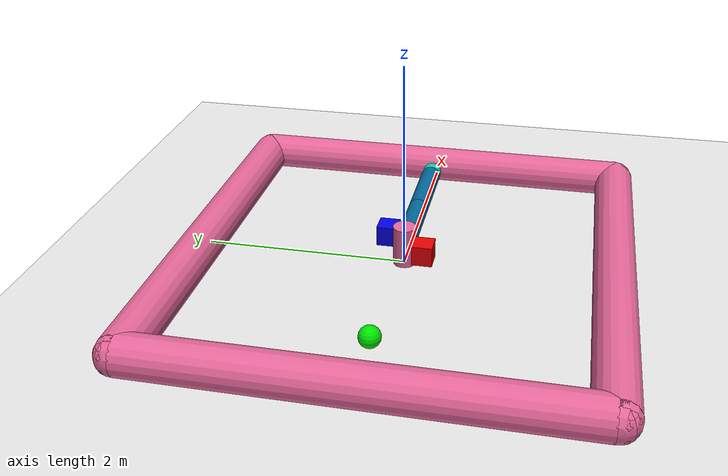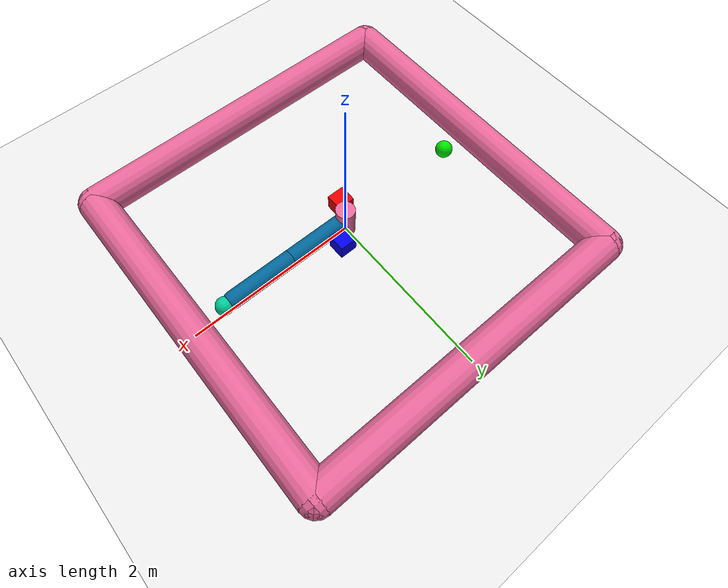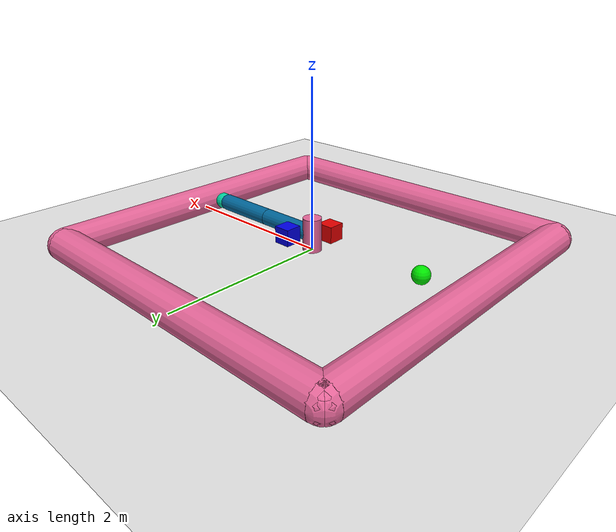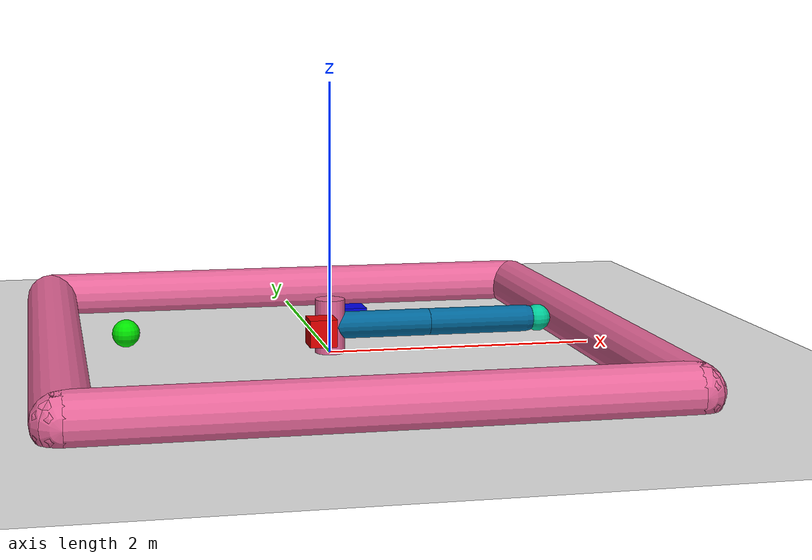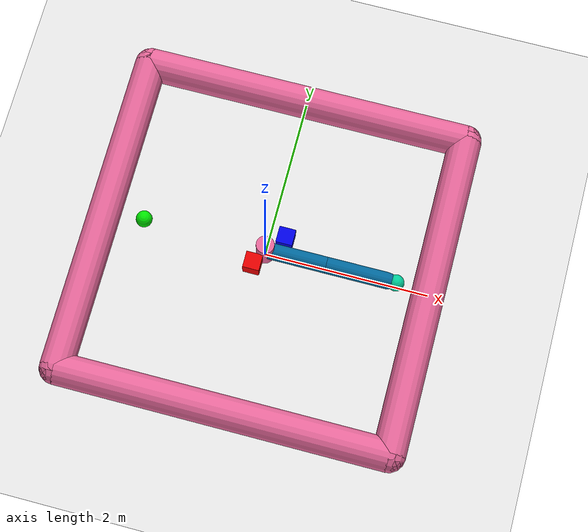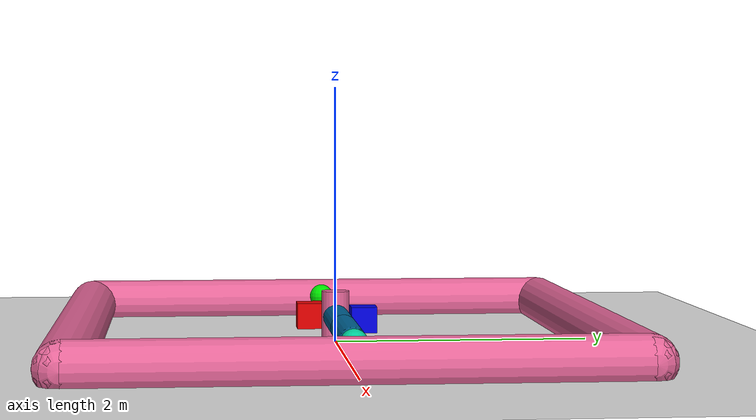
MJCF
<mujoco model="reacher">
    <compiler angle="radian" inertiafromgeom="auto"/>
    <default>
        <joint armature="0.01" damping="0.1" limited="true" frictionloss="0.5"/>
        <geom friction="0.1 0.1 0.1" rgba="0.7 0.7 0 1" condim="3" density="10"/>
    </default>
    <option gravity="0 0 -9.81" integrator="RK4" timestep="0.05" noslip_iterations="5"/>
    <worldbody>
        <!-- Arena -->
        <geom conaffinity="1" contype="0" condim="3" name="ground" pos="0 0 0" rgba="0.9 0.9 0.9 1" size="5 5 10" type="plane"/>
        <geom contype="0" fromto="-2 -2 .1 2 -2 .1" name="sideS" rgba="0.9 0.4 0.6 1" size=".2" type="capsule"/>
        <geom contype="0" fromto=" 2 -2 .1 2  2 .1" name="sideE" rgba="0.9 0.4 0.6 1" size=".2" type="capsule"/>
        <geom contype="0" fromto="-2  2 .1 2  2 .1" name="sideN" rgba="0.9 0.4 0.6 1" size=".2" type="capsule"/>
        <geom contype="0" fromto="-2 -2 .1 -2 2 .1" name="sideW" rgba="0.9 0.4 0.6 1" size=".2" type="capsule"/>

        <!-- Arm -->
        <geom conaffinity="0" contype="0" fromto="0 0 0 0 0 0.4" name="root" rgba="0.9 0.4 0.6 1" size=".11" type="cylinder"/>
        <body name="body0" pos="0 0 .2">
            <geom conaffinity="0" contype="1" fromto="0 0 0 0.75 0 0" name="link0" rgba="0.0 0.4 0.6 1" size=".1" type="capsule"/>
            <joint axis="0 0 1" limited="false" name="joint0" pos="0 0 0" type="hinge"/>
            <body name="body1" pos="0.75 0 0">
                <joint axis="0 0 1" limited="true" name="joint1" pos="0 0 0" range="-3.0 3.0" type="hinge"/>
                <geom conaffinity="0" contype="1" fromto="0 0 0 0.75 0 0" name="link1" rgba="0.0 0.4 0.6 1" size=".1" type="capsule"/>
                <body name="fingertip" pos="0.85 0 0">
                    <geom conaffinity="0" contype="1" name="fingertip" pos="0 0 0" rgba="0.0 0.8 0.6 1" size=".1" type="sphere"/>
                </body>
            </body>
        </body>
        <!-- Target -->
        <body name="target" pos="-1.5 0.0 .2">
  <geom type="sphere" size="0.1" rgba="0 0.9 0 1" contype="1" conaffinity="1"/>
</body>

        <body name="box1" pos="-0.1 -0.2 0.2">
            <joint type="free" limited="false"/>
            <inertial pos = "0 0 0" mass = "0.1" diaginertia="0.0000133 0.0000133 0.0000133"/>
            <geom name="box1" size="0.1 0.1 0.1" type="box" rgba = "0.9 0 0 1" solref="0.01 1.1"/>
        </body>
        <body name="box2" pos="0.2 0.2 0.2">
            <joint type="free" limited="false"/>
            <inertial pos = "0 0 0" mass = "10" diaginertia="0.000133 0.000133 0.000133"/>
            <geom name="box2" size="0.1 0.1 0.1" type="box" rgba = "0 0 0.9 1" solref="0.01 1.1"/>
        </body>
    </worldbody>
    <actuator>
        <motor ctrllimited="true" ctrlrange="-1.0 1.0" gear="1.0" joint="joint0"/>
        <motor ctrllimited="true" ctrlrange="-1.0 1.0" gear="1.0" joint="joint1"/>
    </actuator>
</mujoco>
